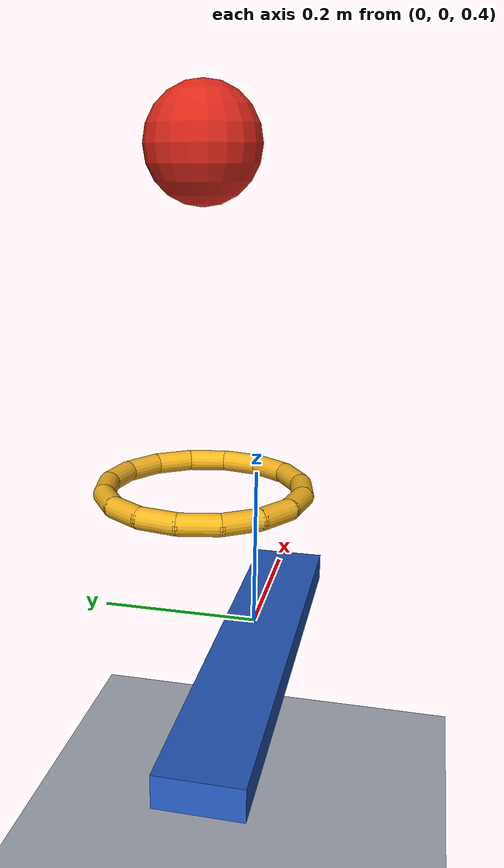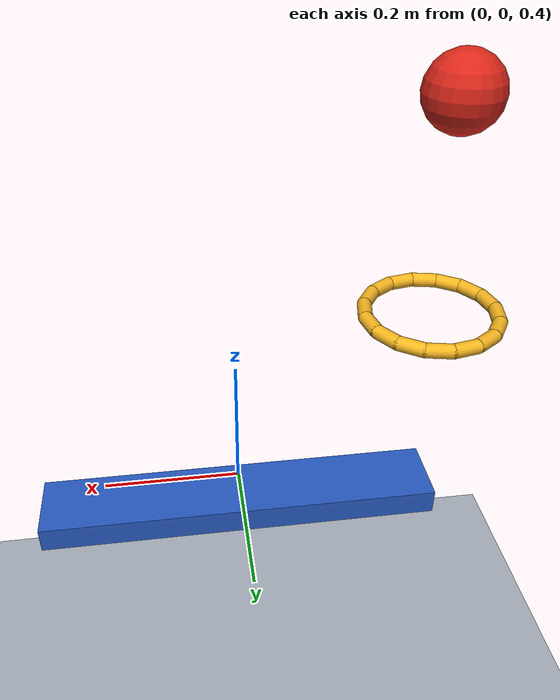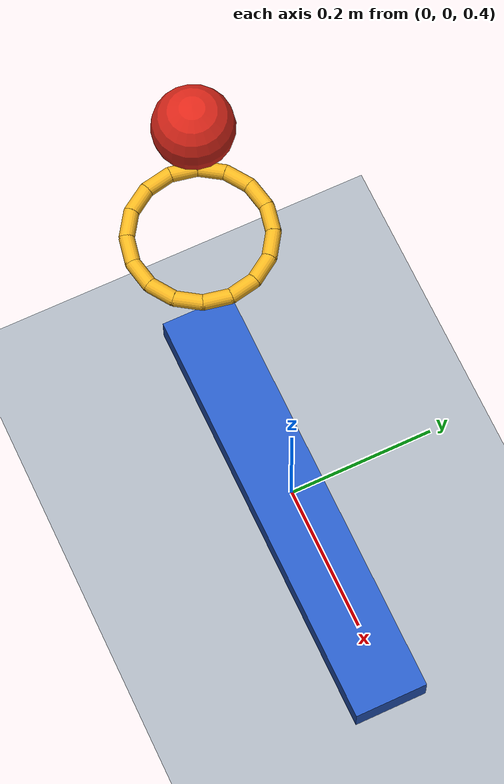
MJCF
<mujoco model="ball_ring_lever">
  <compiler angle="radian" autolimits="true"/>
  <option timestep="0.002" gravity="0 0 -9.81" integrator="implicitfast" solver="Newton" iterations="100" tolerance="1e-10"/>

  <visual>
    <headlight ambient="0.35 0.35 0.35" diffuse="0.7 0.7 0.7" specular="0.2 0.2 0.2"/>
  </visual>

  <worldbody>
    <light name="scene_light" pos="-1 -2 3" dir="0.3 0.5 -1"/>
    <geom name="floor" type="plane" pos="0 0 0" size="3 3 0.1" friction="0.72 0.005 0.005" condim="6" solref="0.004 0.71565" solimp="0.99 0.99 0.001" rgba="0.65 0.68 0.72 1"/>

    <!-- Ball center starts 0.30 m above the ring's horizontal center plane. -->
    <body name="ball1" pos="-0.27 0 0.97">
      <freejoint name="ball1_free"/>
      <geom name="ball1_sphere" type="sphere" size="0.05" mass="0.20" friction="0.72 0.005 0.005" condim="6" solref="0.004 0.71565" solimp="0.99 0.99 0.001" rgba="0.85 0.15 0.10 1"/>
    </body>

    <!-- Fixed horizontal ring, formed from sixteen overlapping capsules.
         Centerline circumradius = (0.08 + 0.01)/cos(pi/16), giving
         a minimum clear diameter of 0.16 m. -->
    <body name="ring1" pos="-0.27 0 0.67">
      <geom name="ring1_segment01" type="capsule" fromto="0.0917632 0 0 0.0847782 0.0351163 0" size="0.01" friction="0.72 0.005 0.005" condim="6" solref="0.004 0.71565" solimp="0.99 0.99 0.001" rgba="0.95 0.70 0.12 1"/>
      <geom name="ring1_segment02" type="capsule" fromto="0.0847782 0.0351163 0 0.0648864 0.0648864 0" size="0.01" friction="0.72 0.005 0.005" condim="6" solref="0.004 0.71565" solimp="0.99 0.99 0.001" rgba="0.95 0.70 0.12 1"/>
      <geom name="ring1_segment03" type="capsule" fromto="0.0648864 0.0648864 0 0.0351163 0.0847782 0" size="0.01" friction="0.72 0.005 0.005" condim="6" solref="0.004 0.71565" solimp="0.99 0.99 0.001" rgba="0.95 0.70 0.12 1"/>
      <geom name="ring1_segment04" type="capsule" fromto="0.0351163 0.0847782 0 0 0.0917632 0" size="0.01" friction="0.72 0.005 0.005" condim="6" solref="0.004 0.71565" solimp="0.99 0.99 0.001" rgba="0.95 0.70 0.12 1"/>
      <geom name="ring1_segment05" type="capsule" fromto="0 0.0917632 0 -0.0351163 0.0847782 0" size="0.01" friction="0.72 0.005 0.005" condim="6" solref="0.004 0.71565" solimp="0.99 0.99 0.001" rgba="0.95 0.70 0.12 1"/>
      <geom name="ring1_segment06" type="capsule" fromto="-0.0351163 0.0847782 0 -0.0648864 0.0648864 0" size="0.01" friction="0.72 0.005 0.005" condim="6" solref="0.004 0.71565" solimp="0.99 0.99 0.001" rgba="0.95 0.70 0.12 1"/>
      <geom name="ring1_segment07" type="capsule" fromto="-0.0648864 0.0648864 0 -0.0847782 0.0351163 0" size="0.01" friction="0.72 0.005 0.005" condim="6" solref="0.004 0.71565" solimp="0.99 0.99 0.001" rgba="0.95 0.70 0.12 1"/>
      <geom name="ring1_segment08" type="capsule" fromto="-0.0847782 0.0351163 0 -0.0917632 0 0" size="0.01" friction="0.72 0.005 0.005" condim="6" solref="0.004 0.71565" solimp="0.99 0.99 0.001" rgba="0.95 0.70 0.12 1"/>
      <geom name="ring1_segment09" type="capsule" fromto="-0.0917632 0 0 -0.0847782 -0.0351163 0" size="0.01" friction="0.72 0.005 0.005" condim="6" solref="0.004 0.71565" solimp="0.99 0.99 0.001" rgba="0.95 0.70 0.12 1"/>
      <geom name="ring1_segment10" type="capsule" fromto="-0.0847782 -0.0351163 0 -0.0648864 -0.0648864 0" size="0.01" friction="0.72 0.005 0.005" condim="6" solref="0.004 0.71565" solimp="0.99 0.99 0.001" rgba="0.95 0.70 0.12 1"/>
      <geom name="ring1_segment11" type="capsule" fromto="-0.0648864 -0.0648864 0 -0.0351163 -0.0847782 0" size="0.01" friction="0.72 0.005 0.005" condim="6" solref="0.004 0.71565" solimp="0.99 0.99 0.001" rgba="0.95 0.70 0.12 1"/>
      <geom name="ring1_segment12" type="capsule" fromto="-0.0351163 -0.0847782 0 0 -0.0917632 0" size="0.01" friction="0.72 0.005 0.005" condim="6" solref="0.004 0.71565" solimp="0.99 0.99 0.001" rgba="0.95 0.70 0.12 1"/>
      <geom name="ring1_segment13" type="capsule" fromto="0 -0.0917632 0 0.0351163 -0.0847782 0" size="0.01" friction="0.72 0.005 0.005" condim="6" solref="0.004 0.71565" solimp="0.99 0.99 0.001" rgba="0.95 0.70 0.12 1"/>
      <geom name="ring1_segment14" type="capsule" fromto="0.0351163 -0.0847782 0 0.0648864 -0.0648864 0" size="0.01" friction="0.72 0.005 0.005" condim="6" solref="0.004 0.71565" solimp="0.99 0.99 0.001" rgba="0.95 0.70 0.12 1"/>
      <geom name="ring1_segment15" type="capsule" fromto="0.0648864 -0.0648864 0 0.0847782 -0.0351163 0" size="0.01" friction="0.72 0.005 0.005" condim="6" solref="0.004 0.71565" solimp="0.99 0.99 0.001" rgba="0.95 0.70 0.12 1"/>
      <geom name="ring1_segment16" type="capsule" fromto="0.0847782 -0.0351163 0 0.0917632 0 0" size="0.01" friction="0.72 0.005 0.005" condim="6" solref="0.004 0.71565" solimp="0.99 0.99 0.001" rgba="0.95 0.70 0.12 1"/>
    </body>

    <!-- Lever top initially lies at z=0.37 m.
         First touch occurs with ball center at z=0.42 m:
         another 0.25 m below the ring plane, at the lever's left end. -->
    <body name="lever1" pos="0 0 0.35">
      <joint name="lever1_hinge" type="hinge" pos="0 0 0" axis="0 1 0" damping="0.04"/>
      <geom name="lever1_beam" type="box" size="0.30 0.05 0.02" mass="0.50" friction="0.72 0.005 0.005" condim="6" solref="0.004 0.71565" solimp="0.99 0.99 0.001" rgba="0.15 0.35 0.75 1"/>
    </body>
  </worldbody>

  <keyframe>
    <key name="start" time="0" qpos="-0.27 0 0.97 1 0 0 0 0" qvel="0 0 0 0 0 0 0"/>
  </keyframe>
</mujoco>
